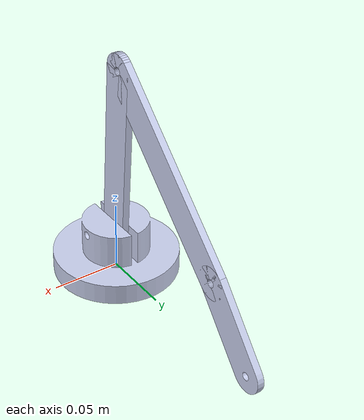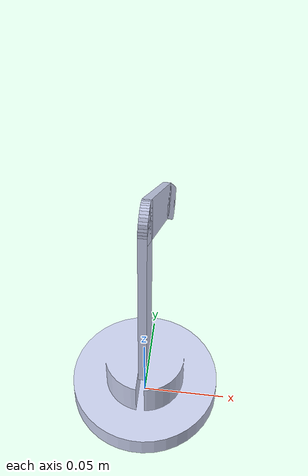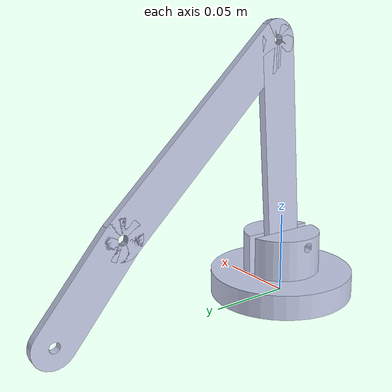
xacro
<?xml version="1.0" encoding="utf-8"?>
<robot xmlns:xacro="http://www.ros.org/wiki/xacro" name="automation_lab_description">

  <link name="base_link">
    <inertial>
      <origin xyz="8.42733314122129E-10 -7.83632932849221E-10 0.0131339548413242" rpy="0 0 0" />
      <mass value="0.133462680280402" />
      <inertia
        ixx="6.80679000064331E-05"
        ixy="8.29276899439569E-14"
        ixz="2.33309541601879E-12"
        iyy="6.89452001264637E-05"
        iyz="2.0159402068449E-12"
        izz="0.000108227859090869" />
    </inertial>
    <visual>
      <origin xyz="0 0 0" rpy="0 0 0" />
      <geometry>
        <mesh filename="package://automation_lab_description/meshes/base_link.STL" />
      </geometry>
      <material name="base_material">
        <color rgba="0.792 0.82 0.933 1" />
      </material>
    </visual>
    <collision>
      <origin xyz="0 0 0" rpy="0 0 0" />
      <geometry>
        <mesh filename="package://automation_lab_description/meshes/base_link.STL" />
      </geometry>
    </collision>
  </link>

  <link name="link1">
    <inertial>
      <origin xyz="0.002145828189896 -0.0156062150937305 0.0594869401671343" rpy="0 0 0" />
      <mass value="0.0167392033717616" />
      <inertia
        ixx="2.83815397709826E-05"
        ixy="-3.32958603211551E-23"
        ixz="1.18801289732245E-22"
        iyy="2.5901189159329E-05"
        iyz="6.57888452256705E-06"
        izz="2.55009729236924E-06" />
    </inertial>
    <visual>
      <origin xyz="0 0 0" rpy="0 0 0" />
      <geometry>
        <mesh filename="package://automation_lab_description/meshes/link1.STL" />
      </geometry>
      <material name="link1_material">
        <color rgba="0.792 0.82 0.933 1" />
      </material>
    </visual>
    <collision>
      <origin xyz="0 0 0" rpy="0 0 0" />
      <geometry>
        <mesh filename="package://automation_lab_description/meshes/link1.STL" />
      </geometry>
    </collision>
  </link>

  <joint name="joint1" type="revolute">
    <origin xyz="-0.0021458 0 0.034765" rpy="-0.31971 0 0" />
    <parent link="base_link" />
    <child link="link1" />
    <axis xyz="1 0 0" />
    <limit lower="-3.14" upper="3.14" effort="0.1" velocity="0.5" />
  </joint>

  <link name="link2">
    <inertial>
      <origin xyz="0.00214582818989599 0.0672889930071242 -0.026989653945303" rpy="0 0 0" />
      <mass value="0.0193792033717616" />
      <inertia
        ixx="4.35566255409592E-05"
        ixy="4.48632131738975E-21"
        ixz="-1.47138353725325E-21"
        iyy="6.73880803048465E-06"
        iyz="1.44164359450204E-05"
        izz="3.68985641911903E-05" />
    </inertial>
    <visual>
      <origin xyz="0 0 0" rpy="0 0 0" />
      <geometry>
        <mesh filename="package://automation_lab_description/meshes/link2.STL" />
      </geometry>
      <material name="link2_material">
        <color rgba="0.792 0.82 0.933 1" />
      </material>
    </visual>
    <collision>
      <origin xyz="0 0 0" rpy="0 0 0" />
      <geometry>
        <mesh filename="package://automation_lab_description/meshes/link2.STL" />
      </geometry>
    </collision>
  </link>

  <joint name="joint2" type="revolute">
    <origin xyz="0 -0.031212 0.11897" rpy="-0.069411 0 0" />
    <parent link="link1" />
    <child link="link2" />
    <axis xyz="1 0 0" />
    <limit lower="-3.14" upper="3.14" effort="0.1" velocity="0.5" />
  </joint>

  <link name="link3">
    <inertial>
      <origin xyz="0.00214582818989599 0.019435340314808 -0.0235056917968312" rpy="0 0 0" />
      <mass value="0.00929920337176157" />
      <inertia
        ixx="5.32663175471859E-06"
        ixy="-2.06045520708131E-23"
        ixz="-1.08273418539216E-23"
        iyy="3.10190325015661E-06"
        iyz="2.19142495279948E-06"
        izz="2.26347518527766E-06" />
    </inertial>
    <visual>
      <origin xyz="0 0 0" rpy="0 0 0" />
      <geometry>
        <mesh filename="package://automation_lab_description/meshes/link3.STL" />
      </geometry>
      <material name="link3_material">
        <color rgba="0.792 0.82 0.933 1" />
      </material>
    </visual>
    <collision>
      <origin xyz="0 0 0" rpy="0 0 0" />
      <geometry>
        <mesh filename="package://automation_lab_description/meshes/link3.STL" />
      </geometry>
    </collision>
  </link>

  <joint name="joint3" type="revolute">
    <origin xyz="0 0.13458 -0.053979" rpy="0.38912 0 0" />
    <parent link="link2" />
    <child link="link3" />
    <axis xyz="1 0 0" />
    <limit lower="-3.14" upper="3.14" effort="0.1" velocity="0.5" />
  </joint>

      <ros2_control name="automation_lab_control" type="system">
      <hardware>
	      <plugin>dynamixel_hardware/DynamixelHardware</plugin>
      </hardware>
            <joint name="joint1">
        <command_interface name="position"/>
        <state_interface name="position"/>
      </joint>

      <joint name="joint2">
        <command_interface name="position"/>
        <state_interface name="position"/>
      </joint>

      <joint name="joint3">
        <command_interface name="position"/>
        <state_interface name="position"/>
      </joint>

     </ros2_control>

</robot>
